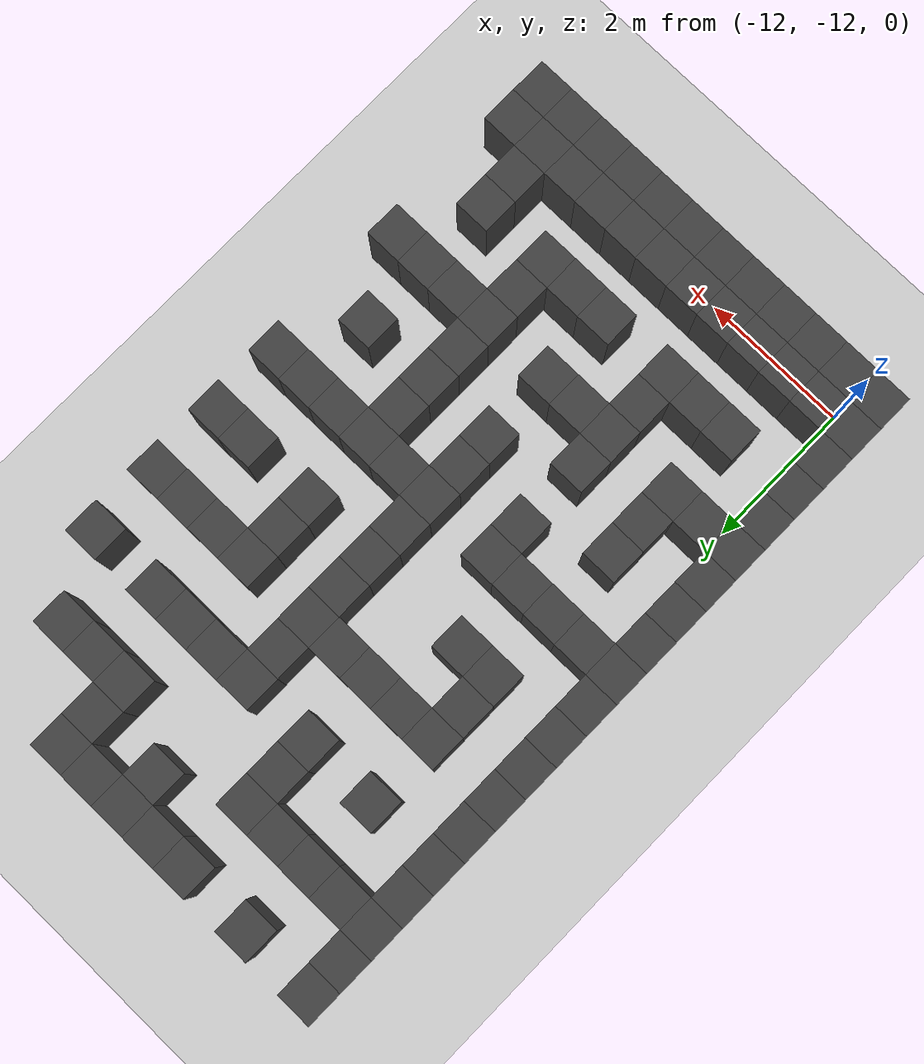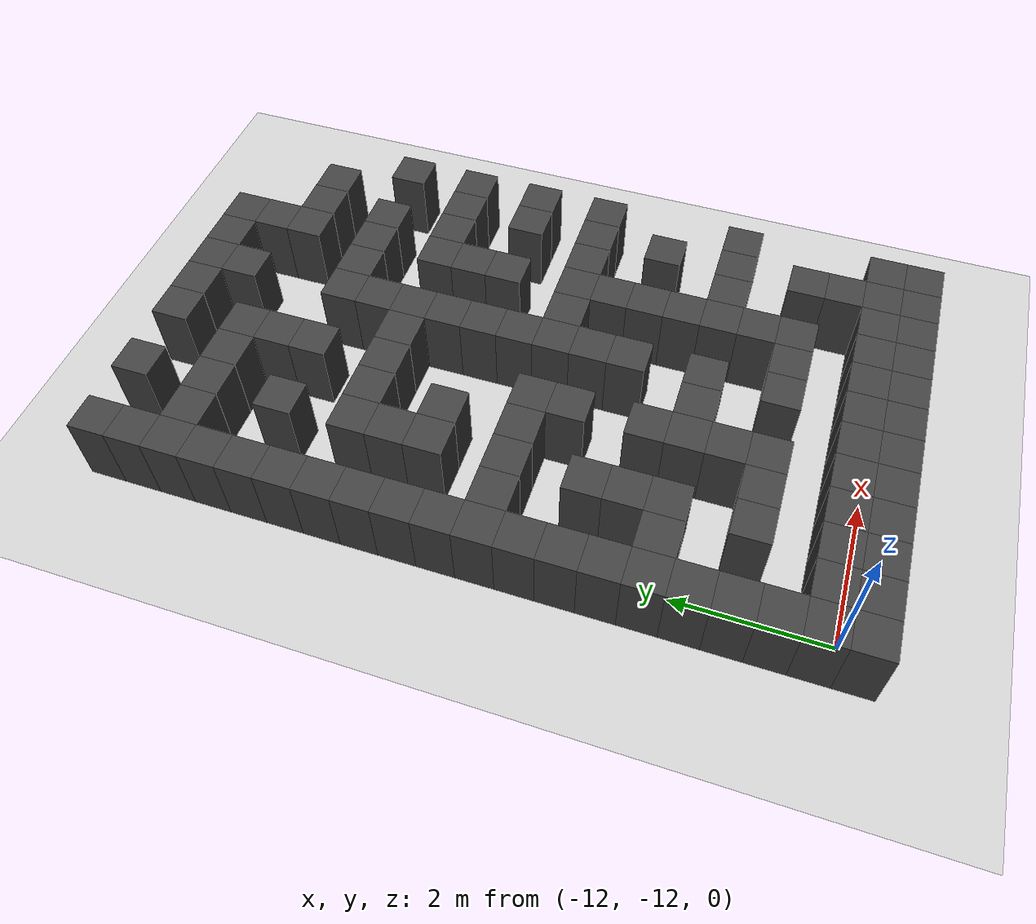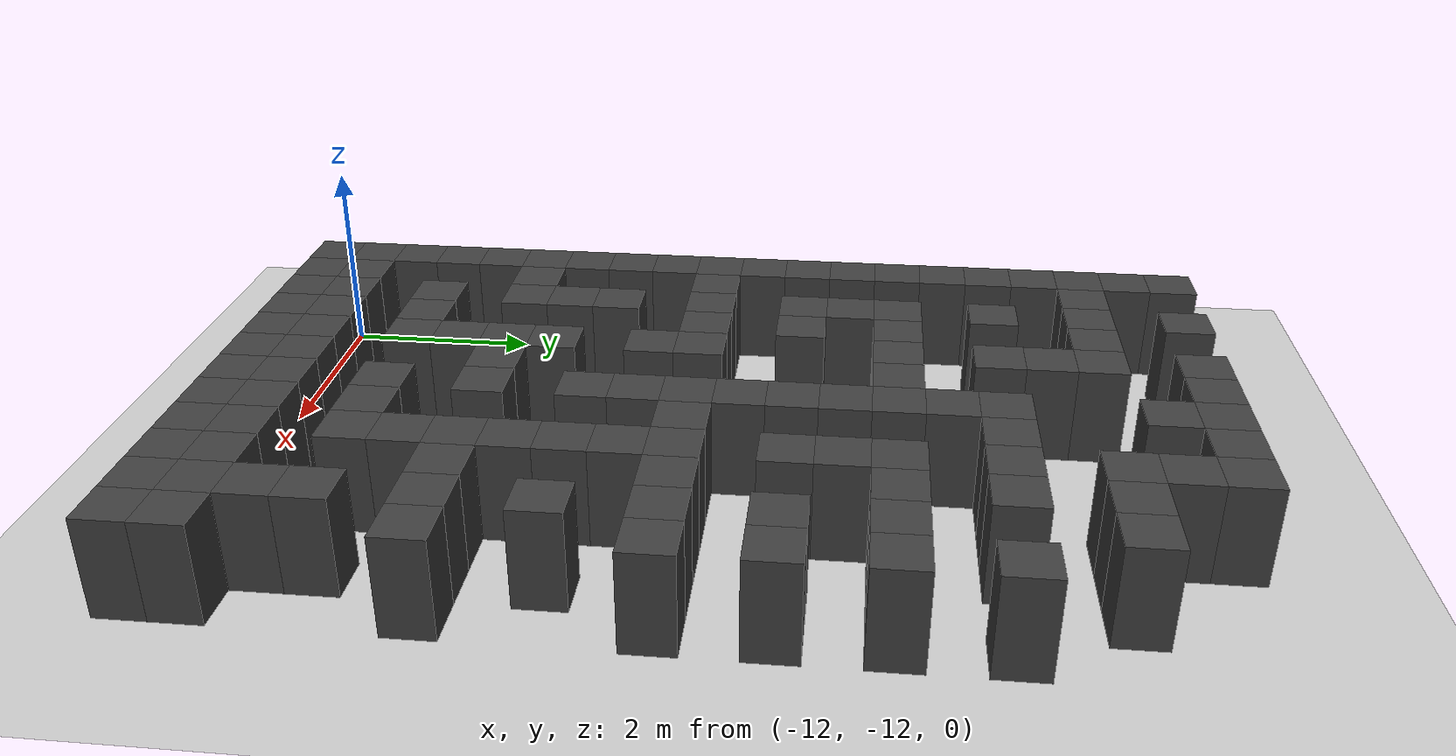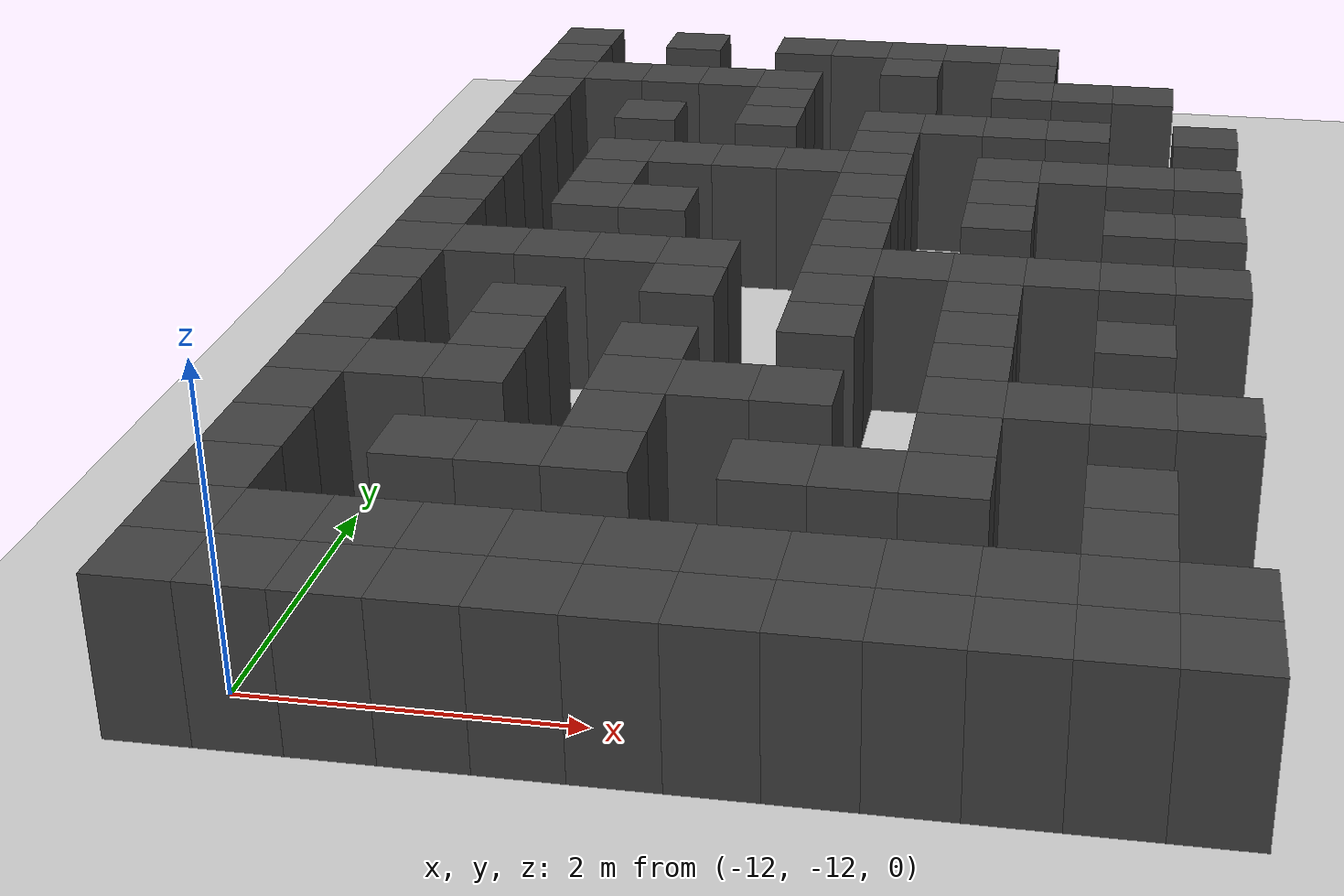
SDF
<sdf version="1.7">
 <world name="map_16588">
  <model name="ground_plane">
   <static>true</static>
   <link name="link">
    <collision name="collision">
     <geometry><plane><normal>0 0 1</normal><size>200 200</size></plane></geometry>
    </collision>
    <visual name="visual">
     <geometry><plane><normal>0 0 1</normal><size>200 200</size></plane></geometry>
     <material><ambient>0.8 0.8 0.8 1</ambient><diffuse>0.8 0.8 0.8 1</diffuse></material>
    </visual>
   </link>
  </model>
  <model name="maze_environment">
   <static>true</static>
   <link name="wall_723">
    <pose>-12.250 -2.750 0.500 0 0 0</pose>
    <collision name="col"><geometry><box><size>0.5 0.5 1.0</size></box></geometry></collision>
    <visual name="vis">
     <geometry><box><size>0.5 0.5 1.0</size></box></geometry>
     <material><ambient>0.15 0.15 0.15 1</ambient><diffuse>0.25 0.25 0.25 1</diffuse></material>
    </visual>
   </link>
   <link name="wall_724">
    <pose>-11.250 -2.750 0.500 0 0 0</pose>
    <collision name="col"><geometry><box><size>0.5 0.5 1.0</size></box></geometry></collision>
    <visual name="vis">
     <geometry><box><size>0.5 0.5 1.0</size></box></geometry>
     <material><ambient>0.15 0.15 0.15 1</ambient><diffuse>0.25 0.25 0.25 1</diffuse></material>
    </visual>
   </link>
   <link name="wall_725">
    <pose>-10.250 -2.750 0.500 0 0 0</pose>
    <collision name="col"><geometry><box><size>0.5 0.5 1.0</size></box></geometry></collision>
    <visual name="vis">
     <geometry><box><size>0.5 0.5 1.0</size></box></geometry>
     <material><ambient>0.15 0.15 0.15 1</ambient><diffuse>0.25 0.25 0.25 1</diffuse></material>
    </visual>
   </link>
   <link name="wall_726">
    <pose>-9.750 -2.750 0.500 0 0 0</pose>
    <collision name="col"><geometry><box><size>0.5 0.5 1.0</size></box></geometry></collision>
    <visual name="vis">
     <geometry><box><size>0.5 0.5 1.0</size></box></geometry>
     <material><ambient>0.15 0.15 0.15 1</ambient><diffuse>0.25 0.25 0.25 1</diffuse></material>
    </visual>
   </link>
   <link name="wall_727">
    <pose>-9.250 -2.750 0.500 0 0 0</pose>
    <collision name="col"><geometry><box><size>0.5 0.5 1.0</size></box></geometry></collision>
    <visual name="vis">
     <geometry><box><size>0.5 0.5 1.0</size></box></geometry>
     <material><ambient>0.15 0.15 0.15 1</ambient><diffuse>0.25 0.25 0.25 1</diffuse></material>
    </visual>
   </link>
   <link name="wall_728">
    <pose>-8.750 -2.750 0.500 0 0 0</pose>
    <collision name="col"><geometry><box><size>0.5 0.5 1.0</size></box></geometry></collision>
    <visual name="vis">
     <geometry><box><size>0.5 0.5 1.0</size></box></geometry>
     <material><ambient>0.15 0.15 0.15 1</ambient><diffuse>0.25 0.25 0.25 1</diffuse></material>
    </visual>
   </link>
   <link name="wall_729">
    <pose>-8.250 -2.750 0.500 0 0 0</pose>
    <collision name="col"><geometry><box><size>0.5 0.5 1.0</size></box></geometry></collision>
    <visual name="vis">
     <geometry><box><size>0.5 0.5 1.0</size></box></geometry>
     <material><ambient>0.15 0.15 0.15 1</ambient><diffuse>0.25 0.25 0.25 1</diffuse></material>
    </visual>
   </link>
   <link name="wall_757">
    <pose>-12.250 -3.250 0.500 0 0 0</pose>
    <collision name="col"><geometry><box><size>0.5 0.5 1.0</size></box></geometry></collision>
    <visual name="vis">
     <geometry><box><size>0.5 0.5 1.0</size></box></geometry>
     <material><ambient>0.15 0.15 0.15 1</ambient><diffuse>0.25 0.25 0.25 1</diffuse></material>
    </visual>
   </link>
   <link name="wall_758">
    <pose>-9.250 -3.250 0.500 0 0 0</pose>
    <collision name="col"><geometry><box><size>0.5 0.5 1.0</size></box></geometry></collision>
    <visual name="vis">
     <geometry><box><size>0.5 0.5 1.0</size></box></geometry>
     <material><ambient>0.15 0.15 0.15 1</ambient><diffuse>0.25 0.25 0.25 1</diffuse></material>
    </visual>
   </link>
   <link name="wall_759">
    <pose>-8.250 -3.250 0.500 0 0 0</pose>
    <collision name="col"><geometry><box><size>0.5 0.5 1.0</size></box></geometry></collision>
    <visual name="vis">
     <geometry><box><size>0.5 0.5 1.0</size></box></geometry>
     <material><ambient>0.15 0.15 0.15 1</ambient><diffuse>0.25 0.25 0.25 1</diffuse></material>
    </visual>
   </link>
   <link name="wall_771">
    <pose>-12.250 -3.750 0.500 0 0 0</pose>
    <collision name="col"><geometry><box><size>0.5 0.5 1.0</size></box></geometry></collision>
    <visual name="vis">
     <geometry><box><size>0.5 0.5 1.0</size></box></geometry>
     <material><ambient>0.15 0.15 0.15 1</ambient><diffuse>0.25 0.25 0.25 1</diffuse></material>
    </visual>
   </link>
   <link name="wall_772">
    <pose>-11.750 -3.750 0.500 0 0 0</pose>
    <collision name="col"><geometry><box><size>0.5 0.5 1.0</size></box></geometry></collision>
    <visual name="vis">
     <geometry><box><size>0.5 0.5 1.0</size></box></geometry>
     <material><ambient>0.15 0.15 0.15 1</ambient><diffuse>0.25 0.25 0.25 1</diffuse></material>
    </visual>
   </link>
   <link name="wall_773">
    <pose>-11.250 -3.750 0.500 0 0 0</pose>
    <collision name="col"><geometry><box><size>0.5 0.5 1.0</size></box></geometry></collision>
    <visual name="vis">
     <geometry><box><size>0.5 0.5 1.0</size></box></geometry>
     <material><ambient>0.15 0.15 0.15 1</ambient><diffuse>0.25 0.25 0.25 1</diffuse></material>
    </visual>
   </link>
   <link name="wall_774">
    <pose>-10.750 -3.750 0.500 0 0 0</pose>
    <collision name="col"><geometry><box><size>0.5 0.5 1.0</size></box></geometry></collision>
    <visual name="vis">
     <geometry><box><size>0.5 0.5 1.0</size></box></geometry>
     <material><ambient>0.15 0.15 0.15 1</ambient><diffuse>0.25 0.25 0.25 1</diffuse></material>
    </visual>
   </link>
   <link name="wall_775">
    <pose>-10.250 -3.750 0.500 0 0 0</pose>
    <collision name="col"><geometry><box><size>0.5 0.5 1.0</size></box></geometry></collision>
    <visual name="vis">
     <geometry><box><size>0.5 0.5 1.0</size></box></geometry>
     <material><ambient>0.15 0.15 0.15 1</ambient><diffuse>0.25 0.25 0.25 1</diffuse></material>
    </visual>
   </link>
   <link name="wall_776">
    <pose>-8.250 -3.750 0.500 0 0 0</pose>
    <collision name="col"><geometry><box><size>0.5 0.5 1.0</size></box></geometry></collision>
    <visual name="vis">
     <geometry><box><size>0.5 0.5 1.0</size></box></geometry>
     <material><ambient>0.15 0.15 0.15 1</ambient><diffuse>0.25 0.25 0.25 1</diffuse></material>
    </visual>
   </link>
   <link name="wall_777">
    <pose>-7.750 -3.750 0.500 0 0 0</pose>
    <collision name="col"><geometry><box><size>0.5 0.5 1.0</size></box></geometry></collision>
    <visual name="vis">
     <geometry><box><size>0.5 0.5 1.0</size></box></geometry>
     <material><ambient>0.15 0.15 0.15 1</ambient><diffuse>0.25 0.25 0.25 1</diffuse></material>
    </visual>
   </link>
   <link name="wall_778">
    <pose>-7.250 -3.750 0.500 0 0 0</pose>
    <collision name="col"><geometry><box><size>0.5 0.5 1.0</size></box></geometry></collision>
    <visual name="vis">
     <geometry><box><size>0.5 0.5 1.0</size></box></geometry>
     <material><ambient>0.15 0.15 0.15 1</ambient><diffuse>0.25 0.25 0.25 1</diffuse></material>
    </visual>
   </link>
   <link name="wall_805">
    <pose>-12.250 -4.250 0.500 0 0 0</pose>
    <collision name="col"><geometry><box><size>0.5 0.5 1.0</size></box></geometry></collision>
    <visual name="vis">
     <geometry><box><size>0.5 0.5 1.0</size></box></geometry>
     <material><ambient>0.15 0.15 0.15 1</ambient><diffuse>0.25 0.25 0.25 1</diffuse></material>
    </visual>
   </link>
   <link name="wall_806">
    <pose>-10.250 -4.250 0.500 0 0 0</pose>
    <collision name="col"><geometry><box><size>0.5 0.5 1.0</size></box></geometry></collision>
    <visual name="vis">
     <geometry><box><size>0.5 0.5 1.0</size></box></geometry>
     <material><ambient>0.15 0.15 0.15 1</ambient><diffuse>0.25 0.25 0.25 1</diffuse></material>
    </visual>
   </link>
   <link name="wall_822">
    <pose>-12.250 -4.750 0.500 0 0 0</pose>
    <collision name="col"><geometry><box><size>0.5 0.5 1.0</size></box></geometry></collision>
    <visual name="vis">
     <geometry><box><size>0.5 0.5 1.0</size></box></geometry>
     <material><ambient>0.15 0.15 0.15 1</ambient><diffuse>0.25 0.25 0.25 1</diffuse></material>
    </visual>
   </link>
   <link name="wall_823">
    <pose>-11.250 -4.750 0.500 0 0 0</pose>
    <collision name="col"><geometry><box><size>0.5 0.5 1.0</size></box></geometry></collision>
    <visual name="vis">
     <geometry><box><size>0.5 0.5 1.0</size></box></geometry>
     <material><ambient>0.15 0.15 0.15 1</ambient><diffuse>0.25 0.25 0.25 1</diffuse></material>
    </visual>
   </link>
   <link name="wall_824">
    <pose>-10.250 -4.750 0.500 0 0 0</pose>
    <collision name="col"><geometry><box><size>0.5 0.5 1.0</size></box></geometry></collision>
    <visual name="vis">
     <geometry><box><size>0.5 0.5 1.0</size></box></geometry>
     <material><ambient>0.15 0.15 0.15 1</ambient><diffuse>0.25 0.25 0.25 1</diffuse></material>
    </visual>
   </link>
   <link name="wall_825">
    <pose>-9.250 -4.750 0.500 0 0 0</pose>
    <collision name="col"><geometry><box><size>0.5 0.5 1.0</size></box></geometry></collision>
    <visual name="vis">
     <geometry><box><size>0.5 0.5 1.0</size></box></geometry>
     <material><ambient>0.15 0.15 0.15 1</ambient><diffuse>0.25 0.25 0.25 1</diffuse></material>
    </visual>
   </link>
   <link name="wall_826">
    <pose>-8.750 -4.750 0.500 0 0 0</pose>
    <collision name="col"><geometry><box><size>0.5 0.5 1.0</size></box></geometry></collision>
    <visual name="vis">
     <geometry><box><size>0.5 0.5 1.0</size></box></geometry>
     <material><ambient>0.15 0.15 0.15 1</ambient><diffuse>0.25 0.25 0.25 1</diffuse></material>
    </visual>
   </link>
   <link name="wall_827">
    <pose>-8.250 -4.750 0.500 0 0 0</pose>
    <collision name="col"><geometry><box><size>0.5 0.5 1.0</size></box></geometry></collision>
    <visual name="vis">
     <geometry><box><size>0.5 0.5 1.0</size></box></geometry>
     <material><ambient>0.15 0.15 0.15 1</ambient><diffuse>0.25 0.25 0.25 1</diffuse></material>
    </visual>
   </link>
   <link name="wall_828">
    <pose>-7.750 -4.750 0.500 0 0 0</pose>
    <collision name="col"><geometry><box><size>0.5 0.5 1.0</size></box></geometry></collision>
    <visual name="vis">
     <geometry><box><size>0.5 0.5 1.0</size></box></geometry>
     <material><ambient>0.15 0.15 0.15 1</ambient><diffuse>0.25 0.25 0.25 1</diffuse></material>
    </visual>
   </link>
   <link name="wall_829">
    <pose>-6.750 -4.750 0.500 0 0 0</pose>
    <collision name="col"><geometry><box><size>0.5 0.5 1.0</size></box></geometry></collision>
    <visual name="vis">
     <geometry><box><size>0.5 0.5 1.0</size></box></geometry>
     <material><ambient>0.15 0.15 0.15 1</ambient><diffuse>0.25 0.25 0.25 1</diffuse></material>
    </visual>
   </link>
   <link name="wall_854">
    <pose>-12.250 -5.250 0.500 0 0 0</pose>
    <collision name="col"><geometry><box><size>0.5 0.5 1.0</size></box></geometry></collision>
    <visual name="vis">
     <geometry><box><size>0.5 0.5 1.0</size></box></geometry>
     <material><ambient>0.15 0.15 0.15 1</ambient><diffuse>0.25 0.25 0.25 1</diffuse></material>
    </visual>
   </link>
   <link name="wall_855">
    <pose>-9.250 -5.250 0.500 0 0 0</pose>
    <collision name="col"><geometry><box><size>0.5 0.5 1.0</size></box></geometry></collision>
    <visual name="vis">
     <geometry><box><size>0.5 0.5 1.0</size></box></geometry>
     <material><ambient>0.15 0.15 0.15 1</ambient><diffuse>0.25 0.25 0.25 1</diffuse></material>
    </visual>
   </link>
   <link name="wall_867">
    <pose>-12.250 -5.750 0.500 0 0 0</pose>
    <collision name="col"><geometry><box><size>0.5 0.5 1.0</size></box></geometry></collision>
    <visual name="vis">
     <geometry><box><size>0.5 0.5 1.0</size></box></geometry>
     <material><ambient>0.15 0.15 0.15 1</ambient><diffuse>0.25 0.25 0.25 1</diffuse></material>
    </visual>
   </link>
   <link name="wall_868">
    <pose>-11.250 -5.750 0.500 0 0 0</pose>
    <collision name="col"><geometry><box><size>0.5 0.5 1.0</size></box></geometry></collision>
    <visual name="vis">
     <geometry><box><size>0.5 0.5 1.0</size></box></geometry>
     <material><ambient>0.15 0.15 0.15 1</ambient><diffuse>0.25 0.25 0.25 1</diffuse></material>
    </visual>
   </link>
   <link name="wall_869">
    <pose>-10.750 -5.750 0.500 0 0 0</pose>
    <collision name="col"><geometry><box><size>0.5 0.5 1.0</size></box></geometry></collision>
    <visual name="vis">
     <geometry><box><size>0.5 0.5 1.0</size></box></geometry>
     <material><ambient>0.15 0.15 0.15 1</ambient><diffuse>0.25 0.25 0.25 1</diffuse></material>
    </visual>
   </link>
   <link name="wall_870">
    <pose>-10.250 -5.750 0.500 0 0 0</pose>
    <collision name="col"><geometry><box><size>0.5 0.5 1.0</size></box></geometry></collision>
    <visual name="vis">
     <geometry><box><size>0.5 0.5 1.0</size></box></geometry>
     <material><ambient>0.15 0.15 0.15 1</ambient><diffuse>0.25 0.25 0.25 1</diffuse></material>
    </visual>
   </link>
   <link name="wall_871">
    <pose>-9.750 -5.750 0.500 0 0 0</pose>
    <collision name="col"><geometry><box><size>0.5 0.5 1.0</size></box></geometry></collision>
    <visual name="vis">
     <geometry><box><size>0.5 0.5 1.0</size></box></geometry>
     <material><ambient>0.15 0.15 0.15 1</ambient><diffuse>0.25 0.25 0.25 1</diffuse></material>
    </visual>
   </link>
   <link name="wall_872">
    <pose>-9.250 -5.750 0.500 0 0 0</pose>
    <collision name="col"><geometry><box><size>0.5 0.5 1.0</size></box></geometry></collision>
    <visual name="vis">
     <geometry><box><size>0.5 0.5 1.0</size></box></geometry>
     <material><ambient>0.15 0.15 0.15 1</ambient><diffuse>0.25 0.25 0.25 1</diffuse></material>
    </visual>
   </link>
   <link name="wall_873">
    <pose>-8.250 -5.750 0.500 0 0 0</pose>
    <collision name="col"><geometry><box><size>0.5 0.5 1.0</size></box></geometry></collision>
    <visual name="vis">
     <geometry><box><size>0.5 0.5 1.0</size></box></geometry>
     <material><ambient>0.15 0.15 0.15 1</ambient><diffuse>0.25 0.25 0.25 1</diffuse></material>
    </visual>
   </link>
   <link name="wall_874">
    <pose>-7.750 -5.750 0.500 0 0 0</pose>
    <collision name="col"><geometry><box><size>0.5 0.5 1.0</size></box></geometry></collision>
    <visual name="vis">
     <geometry><box><size>0.5 0.5 1.0</size></box></geometry>
     <material><ambient>0.15 0.15 0.15 1</ambient><diffuse>0.25 0.25 0.25 1</diffuse></material>
    </visual>
   </link>
   <link name="wall_875">
    <pose>-7.250 -5.750 0.500 0 0 0</pose>
    <collision name="col"><geometry><box><size>0.5 0.5 1.0</size></box></geometry></collision>
    <visual name="vis">
     <geometry><box><size>0.5 0.5 1.0</size></box></geometry>
     <material><ambient>0.15 0.15 0.15 1</ambient><diffuse>0.25 0.25 0.25 1</diffuse></material>
    </visual>
   </link>
   <link name="wall_876">
    <pose>-6.750 -5.750 0.500 0 0 0</pose>
    <collision name="col"><geometry><box><size>0.5 0.5 1.0</size></box></geometry></collision>
    <visual name="vis">
     <geometry><box><size>0.5 0.5 1.0</size></box></geometry>
     <material><ambient>0.15 0.15 0.15 1</ambient><diffuse>0.25 0.25 0.25 1</diffuse></material>
    </visual>
   </link>
   <link name="wall_898">
    <pose>-12.250 -6.250 0.500 0 0 0</pose>
    <collision name="col"><geometry><box><size>0.5 0.5 1.0</size></box></geometry></collision>
    <visual name="vis">
     <geometry><box><size>0.5 0.5 1.0</size></box></geometry>
     <material><ambient>0.15 0.15 0.15 1</ambient><diffuse>0.25 0.25 0.25 1</diffuse></material>
    </visual>
   </link>
   <link name="wall_899">
    <pose>-11.250 -6.250 0.500 0 0 0</pose>
    <collision name="col"><geometry><box><size>0.5 0.5 1.0</size></box></geometry></collision>
    <visual name="vis">
     <geometry><box><size>0.5 0.5 1.0</size></box></geometry>
     <material><ambient>0.15 0.15 0.15 1</ambient><diffuse>0.25 0.25 0.25 1</diffuse></material>
    </visual>
   </link>
   <link name="wall_900">
    <pose>-9.250 -6.250 0.500 0 0 0</pose>
    <collision name="col"><geometry><box><size>0.5 0.5 1.0</size></box></geometry></collision>
    <visual name="vis">
     <geometry><box><size>0.5 0.5 1.0</size></box></geometry>
     <material><ambient>0.15 0.15 0.15 1</ambient><diffuse>0.25 0.25 0.25 1</diffuse></material>
    </visual>
   </link>
   <link name="wall_901">
    <pose>-8.250 -6.250 0.500 0 0 0</pose>
    <collision name="col"><geometry><box><size>0.5 0.5 1.0</size></box></geometry></collision>
    <visual name="vis">
     <geometry><box><size>0.5 0.5 1.0</size></box></geometry>
     <material><ambient>0.15 0.15 0.15 1</ambient><diffuse>0.25 0.25 0.25 1</diffuse></material>
    </visual>
   </link>
   <link name="wall_912">
    <pose>-12.250 -6.750 0.500 0 0 0</pose>
    <collision name="col"><geometry><box><size>0.5 0.5 1.0</size></box></geometry></collision>
    <visual name="vis">
     <geometry><box><size>0.5 0.5 1.0</size></box></geometry>
     <material><ambient>0.15 0.15 0.15 1</ambient><diffuse>0.25 0.25 0.25 1</diffuse></material>
    </visual>
   </link>
   <link name="wall_913">
    <pose>-11.250 -6.750 0.500 0 0 0</pose>
    <collision name="col"><geometry><box><size>0.5 0.5 1.0</size></box></geometry></collision>
    <visual name="vis">
     <geometry><box><size>0.5 0.5 1.0</size></box></geometry>
     <material><ambient>0.15 0.15 0.15 1</ambient><diffuse>0.25 0.25 0.25 1</diffuse></material>
    </visual>
   </link>
   <link name="wall_914">
    <pose>-10.750 -6.750 0.500 0 0 0</pose>
    <collision name="col"><geometry><box><size>0.5 0.5 1.0</size></box></geometry></collision>
    <visual name="vis">
     <geometry><box><size>0.5 0.5 1.0</size></box></geometry>
     <material><ambient>0.15 0.15 0.15 1</ambient><diffuse>0.25 0.25 0.25 1</diffuse></material>
    </visual>
   </link>
   <link name="wall_915">
    <pose>-9.250 -6.750 0.500 0 0 0</pose>
    <collision name="col"><geometry><box><size>0.5 0.5 1.0</size></box></geometry></collision>
    <visual name="vis">
     <geometry><box><size>0.5 0.5 1.0</size></box></geometry>
     <material><ambient>0.15 0.15 0.15 1</ambient><diffuse>0.25 0.25 0.25 1</diffuse></material>
    </visual>
   </link>
   <link name="wall_916">
    <pose>-8.250 -6.750 0.500 0 0 0</pose>
    <collision name="col"><geometry><box><size>0.5 0.5 1.0</size></box></geometry></collision>
    <visual name="vis">
     <geometry><box><size>0.5 0.5 1.0</size></box></geometry>
     <material><ambient>0.15 0.15 0.15 1</ambient><diffuse>0.25 0.25 0.25 1</diffuse></material>
    </visual>
   </link>
   <link name="wall_917">
    <pose>-7.250 -6.750 0.500 0 0 0</pose>
    <collision name="col"><geometry><box><size>0.5 0.5 1.0</size></box></geometry></collision>
    <visual name="vis">
     <geometry><box><size>0.5 0.5 1.0</size></box></geometry>
     <material><ambient>0.15 0.15 0.15 1</ambient><diffuse>0.25 0.25 0.25 1</diffuse></material>
    </visual>
   </link>
   <link name="wall_918">
    <pose>-6.750 -6.750 0.500 0 0 0</pose>
    <collision name="col"><geometry><box><size>0.5 0.5 1.0</size></box></geometry></collision>
    <visual name="vis">
     <geometry><box><size>0.5 0.5 1.0</size></box></geometry>
     <material><ambient>0.15 0.15 0.15 1</ambient><diffuse>0.25 0.25 0.25 1</diffuse></material>
    </visual>
   </link>
   <link name="wall_945">
    <pose>-12.250 -7.250 0.500 0 0 0</pose>
    <collision name="col"><geometry><box><size>0.5 0.5 1.0</size></box></geometry></collision>
    <visual name="vis">
     <geometry><box><size>0.5 0.5 1.0</size></box></geometry>
     <material><ambient>0.15 0.15 0.15 1</ambient><diffuse>0.25 0.25 0.25 1</diffuse></material>
    </visual>
   </link>
   <link name="wall_946">
    <pose>-9.250 -7.250 0.500 0 0 0</pose>
    <collision name="col"><geometry><box><size>0.5 0.5 1.0</size></box></geometry></collision>
    <visual name="vis">
     <geometry><box><size>0.5 0.5 1.0</size></box></geometry>
     <material><ambient>0.15 0.15 0.15 1</ambient><diffuse>0.25 0.25 0.25 1</diffuse></material>
    </visual>
   </link>
   <link name="wall_956">
    <pose>-12.250 -7.750 0.500 0 0 0</pose>
    <collision name="col"><geometry><box><size>0.5 0.5 1.0</size></box></geometry></collision>
    <visual name="vis">
     <geometry><box><size>0.5 0.5 1.0</size></box></geometry>
     <material><ambient>0.15 0.15 0.15 1</ambient><diffuse>0.25 0.25 0.25 1</diffuse></material>
    </visual>
   </link>
   <link name="wall_957">
    <pose>-11.750 -7.750 0.500 0 0 0</pose>
    <collision name="col"><geometry><box><size>0.5 0.5 1.0</size></box></geometry></collision>
    <visual name="vis">
     <geometry><box><size>0.5 0.5 1.0</size></box></geometry>
     <material><ambient>0.15 0.15 0.15 1</ambient><diffuse>0.25 0.25 0.25 1</diffuse></material>
    </visual>
   </link>
   <link name="wall_958">
    <pose>-11.250 -7.750 0.500 0 0 0</pose>
    <collision name="col"><geometry><box><size>0.5 0.5 1.0</size></box></geometry></collision>
    <visual name="vis">
     <geometry><box><size>0.5 0.5 1.0</size></box></geometry>
     <material><ambient>0.15 0.15 0.15 1</ambient><diffuse>0.25 0.25 0.25 1</diffuse></material>
    </visual>
   </link>
   <link name="wall_959">
    <pose>-10.750 -7.750 0.500 0 0 0</pose>
    <collision name="col"><geometry><box><size>0.5 0.5 1.0</size></box></geometry></collision>
    <visual name="vis">
     <geometry><box><size>0.5 0.5 1.0</size></box></geometry>
     <material><ambient>0.15 0.15 0.15 1</ambient><diffuse>0.25 0.25 0.25 1</diffuse></material>
    </visual>
   </link>
   <link name="wall_960">
    <pose>-10.250 -7.750 0.500 0 0 0</pose>
    <collision name="col"><geometry><box><size>0.5 0.5 1.0</size></box></geometry></collision>
    <visual name="vis">
     <geometry><box><size>0.5 0.5 1.0</size></box></geometry>
     <material><ambient>0.15 0.15 0.15 1</ambient><diffuse>0.25 0.25 0.25 1</diffuse></material>
    </visual>
   </link>
   <link name="wall_961">
    <pose>-9.250 -7.750 0.500 0 0 0</pose>
    <collision name="col"><geometry><box><size>0.5 0.5 1.0</size></box></geometry></collision>
    <visual name="vis">
     <geometry><box><size>0.5 0.5 1.0</size></box></geometry>
     <material><ambient>0.15 0.15 0.15 1</ambient><diffuse>0.25 0.25 0.25 1</diffuse></material>
    </visual>
   </link>
   <link name="wall_962">
    <pose>-8.750 -7.750 0.500 0 0 0</pose>
    <collision name="col"><geometry><box><size>0.5 0.5 1.0</size></box></geometry></collision>
    <visual name="vis">
     <geometry><box><size>0.5 0.5 1.0</size></box></geometry>
     <material><ambient>0.15 0.15 0.15 1</ambient><diffuse>0.25 0.25 0.25 1</diffuse></material>
    </visual>
   </link>
   <link name="wall_963">
    <pose>-8.250 -7.750 0.500 0 0 0</pose>
    <collision name="col"><geometry><box><size>0.5 0.5 1.0</size></box></geometry></collision>
    <visual name="vis">
     <geometry><box><size>0.5 0.5 1.0</size></box></geometry>
     <material><ambient>0.15 0.15 0.15 1</ambient><diffuse>0.25 0.25 0.25 1</diffuse></material>
    </visual>
   </link>
   <link name="wall_964">
    <pose>-7.750 -7.750 0.500 0 0 0</pose>
    <collision name="col"><geometry><box><size>0.5 0.5 1.0</size></box></geometry></collision>
    <visual name="vis">
     <geometry><box><size>0.5 0.5 1.0</size></box></geometry>
     <material><ambient>0.15 0.15 0.15 1</ambient><diffuse>0.25 0.25 0.25 1</diffuse></material>
    </visual>
   </link>
   <link name="wall_965">
    <pose>-7.250 -7.750 0.500 0 0 0</pose>
    <collision name="col"><geometry><box><size>0.5 0.5 1.0</size></box></geometry></collision>
    <visual name="vis">
     <geometry><box><size>0.5 0.5 1.0</size></box></geometry>
     <material><ambient>0.15 0.15 0.15 1</ambient><diffuse>0.25 0.25 0.25 1</diffuse></material>
    </visual>
   </link>
   <link name="wall_966">
    <pose>-6.750 -7.750 0.500 0 0 0</pose>
    <collision name="col"><geometry><box><size>0.5 0.5 1.0</size></box></geometry></collision>
    <visual name="vis">
     <geometry><box><size>0.5 0.5 1.0</size></box></geometry>
     <material><ambient>0.15 0.15 0.15 1</ambient><diffuse>0.25 0.25 0.25 1</diffuse></material>
    </visual>
   </link>
   <link name="wall_995">
    <pose>-12.250 -8.250 0.500 0 0 0</pose>
    <collision name="col"><geometry><box><size>0.5 0.5 1.0</size></box></geometry></collision>
    <visual name="vis">
     <geometry><box><size>0.5 0.5 1.0</size></box></geometry>
     <material><ambient>0.15 0.15 0.15 1</ambient><diffuse>0.25 0.25 0.25 1</diffuse></material>
    </visual>
   </link>
   <link name="wall_996">
    <pose>-10.250 -8.250 0.500 0 0 0</pose>
    <collision name="col"><geometry><box><size>0.5 0.5 1.0</size></box></geometry></collision>
    <visual name="vis">
     <geometry><box><size>0.5 0.5 1.0</size></box></geometry>
     <material><ambient>0.15 0.15 0.15 1</ambient><diffuse>0.25 0.25 0.25 1</diffuse></material>
    </visual>
   </link>
   <link name="wall_997">
    <pose>-9.250 -8.250 0.500 0 0 0</pose>
    <collision name="col"><geometry><box><size>0.5 0.5 1.0</size></box></geometry></collision>
    <visual name="vis">
     <geometry><box><size>0.5 0.5 1.0</size></box></geometry>
     <material><ambient>0.15 0.15 0.15 1</ambient><diffuse>0.25 0.25 0.25 1</diffuse></material>
    </visual>
   </link>
   <link name="wall_998">
    <pose>-8.250 -8.250 0.500 0 0 0</pose>
    <collision name="col"><geometry><box><size>0.5 0.5 1.0</size></box></geometry></collision>
    <visual name="vis">
     <geometry><box><size>0.5 0.5 1.0</size></box></geometry>
     <material><ambient>0.15 0.15 0.15 1</ambient><diffuse>0.25 0.25 0.25 1</diffuse></material>
    </visual>
   </link>
   <link name="wall_1009">
    <pose>-12.250 -8.750 0.500 0 0 0</pose>
    <collision name="col"><geometry><box><size>0.5 0.5 1.0</size></box></geometry></collision>
    <visual name="vis">
     <geometry><box><size>0.5 0.5 1.0</size></box></geometry>
     <material><ambient>0.15 0.15 0.15 1</ambient><diffuse>0.25 0.25 0.25 1</diffuse></material>
    </visual>
   </link>
   <link name="wall_1010">
    <pose>-11.250 -8.750 0.500 0 0 0</pose>
    <collision name="col"><geometry><box><size>0.5 0.5 1.0</size></box></geometry></collision>
    <visual name="vis">
     <geometry><box><size>0.5 0.5 1.0</size></box></geometry>
     <material><ambient>0.15 0.15 0.15 1</ambient><diffuse>0.25 0.25 0.25 1</diffuse></material>
    </visual>
   </link>
   <link name="wall_1011">
    <pose>-9.250 -8.750 0.500 0 0 0</pose>
    <collision name="col"><geometry><box><size>0.5 0.5 1.0</size></box></geometry></collision>
    <visual name="vis">
     <geometry><box><size>0.5 0.5 1.0</size></box></geometry>
     <material><ambient>0.15 0.15 0.15 1</ambient><diffuse>0.25 0.25 0.25 1</diffuse></material>
    </visual>
   </link>
   <link name="wall_1012">
    <pose>-8.250 -8.750 0.500 0 0 0</pose>
    <collision name="col"><geometry><box><size>0.5 0.5 1.0</size></box></geometry></collision>
    <visual name="vis">
     <geometry><box><size>0.5 0.5 1.0</size></box></geometry>
     <material><ambient>0.15 0.15 0.15 1</ambient><diffuse>0.25 0.25 0.25 1</diffuse></material>
    </visual>
   </link>
   <link name="wall_1013">
    <pose>-7.250 -8.750 0.500 0 0 0</pose>
    <collision name="col"><geometry><box><size>0.5 0.5 1.0</size></box></geometry></collision>
    <visual name="vis">
     <geometry><box><size>0.5 0.5 1.0</size></box></geometry>
     <material><ambient>0.15 0.15 0.15 1</ambient><diffuse>0.25 0.25 0.25 1</diffuse></material>
    </visual>
   </link>
   <link name="wall_1044">
    <pose>-12.250 -9.250 0.500 0 0 0</pose>
    <collision name="col"><geometry><box><size>0.5 0.5 1.0</size></box></geometry></collision>
    <visual name="vis">
     <geometry><box><size>0.5 0.5 1.0</size></box></geometry>
     <material><ambient>0.15 0.15 0.15 1</ambient><diffuse>0.25 0.25 0.25 1</diffuse></material>
    </visual>
   </link>
   <link name="wall_1045">
    <pose>-11.250 -9.250 0.500 0 0 0</pose>
    <collision name="col"><geometry><box><size>0.5 0.5 1.0</size></box></geometry></collision>
    <visual name="vis">
     <geometry><box><size>0.5 0.5 1.0</size></box></geometry>
     <material><ambient>0.15 0.15 0.15 1</ambient><diffuse>0.25 0.25 0.25 1</diffuse></material>
    </visual>
   </link>
   <link name="wall_1046">
    <pose>-10.250 -9.250 0.500 0 0 0</pose>
    <collision name="col"><geometry><box><size>0.5 0.5 1.0</size></box></geometry></collision>
    <visual name="vis">
     <geometry><box><size>0.5 0.5 1.0</size></box></geometry>
     <material><ambient>0.15 0.15 0.15 1</ambient><diffuse>0.25 0.25 0.25 1</diffuse></material>
    </visual>
   </link>
   <link name="wall_1047">
    <pose>-8.250 -9.250 0.500 0 0 0</pose>
    <collision name="col"><geometry><box><size>0.5 0.5 1.0</size></box></geometry></collision>
    <visual name="vis">
     <geometry><box><size>0.5 0.5 1.0</size></box></geometry>
     <material><ambient>0.15 0.15 0.15 1</ambient><diffuse>0.25 0.25 0.25 1</diffuse></material>
    </visual>
   </link>
   <link name="wall_1059">
    <pose>-12.250 -9.750 0.500 0 0 0</pose>
    <collision name="col"><geometry><box><size>0.5 0.5 1.0</size></box></geometry></collision>
    <visual name="vis">
     <geometry><box><size>0.5 0.5 1.0</size></box></geometry>
     <material><ambient>0.15 0.15 0.15 1</ambient><diffuse>0.25 0.25 0.25 1</diffuse></material>
    </visual>
   </link>
   <link name="wall_1060">
    <pose>-11.750 -9.750 0.500 0 0 0</pose>
    <collision name="col"><geometry><box><size>0.5 0.5 1.0</size></box></geometry></collision>
    <visual name="vis">
     <geometry><box><size>0.5 0.5 1.0</size></box></geometry>
     <material><ambient>0.15 0.15 0.15 1</ambient><diffuse>0.25 0.25 0.25 1</diffuse></material>
    </visual>
   </link>
   <link name="wall_1061">
    <pose>-11.250 -9.750 0.500 0 0 0</pose>
    <collision name="col"><geometry><box><size>0.5 0.5 1.0</size></box></geometry></collision>
    <visual name="vis">
     <geometry><box><size>0.5 0.5 1.0</size></box></geometry>
     <material><ambient>0.15 0.15 0.15 1</ambient><diffuse>0.25 0.25 0.25 1</diffuse></material>
    </visual>
   </link>
   <link name="wall_1062">
    <pose>-10.250 -9.750 0.500 0 0 0</pose>
    <collision name="col"><geometry><box><size>0.5 0.5 1.0</size></box></geometry></collision>
    <visual name="vis">
     <geometry><box><size>0.5 0.5 1.0</size></box></geometry>
     <material><ambient>0.15 0.15 0.15 1</ambient><diffuse>0.25 0.25 0.25 1</diffuse></material>
    </visual>
   </link>
   <link name="wall_1063">
    <pose>-9.750 -9.750 0.500 0 0 0</pose>
    <collision name="col"><geometry><box><size>0.5 0.5 1.0</size></box></geometry></collision>
    <visual name="vis">
     <geometry><box><size>0.5 0.5 1.0</size></box></geometry>
     <material><ambient>0.15 0.15 0.15 1</ambient><diffuse>0.25 0.25 0.25 1</diffuse></material>
    </visual>
   </link>
   <link name="wall_1064">
    <pose>-9.250 -9.750 0.500 0 0 0</pose>
    <collision name="col"><geometry><box><size>0.5 0.5 1.0</size></box></geometry></collision>
    <visual name="vis">
     <geometry><box><size>0.5 0.5 1.0</size></box></geometry>
     <material><ambient>0.15 0.15 0.15 1</ambient><diffuse>0.25 0.25 0.25 1</diffuse></material>
    </visual>
   </link>
   <link name="wall_1065">
    <pose>-8.250 -9.750 0.500 0 0 0</pose>
    <collision name="col"><geometry><box><size>0.5 0.5 1.0</size></box></geometry></collision>
    <visual name="vis">
     <geometry><box><size>0.5 0.5 1.0</size></box></geometry>
     <material><ambient>0.15 0.15 0.15 1</ambient><diffuse>0.25 0.25 0.25 1</diffuse></material>
    </visual>
   </link>
   <link name="wall_1066">
    <pose>-7.750 -9.750 0.500 0 0 0</pose>
    <collision name="col"><geometry><box><size>0.5 0.5 1.0</size></box></geometry></collision>
    <visual name="vis">
     <geometry><box><size>0.5 0.5 1.0</size></box></geometry>
     <material><ambient>0.15 0.15 0.15 1</ambient><diffuse>0.25 0.25 0.25 1</diffuse></material>
    </visual>
   </link>
   <link name="wall_1067">
    <pose>-7.250 -9.750 0.500 0 0 0</pose>
    <collision name="col"><geometry><box><size>0.5 0.5 1.0</size></box></geometry></collision>
    <visual name="vis">
     <geometry><box><size>0.5 0.5 1.0</size></box></geometry>
     <material><ambient>0.15 0.15 0.15 1</ambient><diffuse>0.25 0.25 0.25 1</diffuse></material>
    </visual>
   </link>
   <link name="wall_1068">
    <pose>-6.750 -9.750 0.500 0 0 0</pose>
    <collision name="col"><geometry><box><size>0.5 0.5 1.0</size></box></geometry></collision>
    <visual name="vis">
     <geometry><box><size>0.5 0.5 1.0</size></box></geometry>
     <material><ambient>0.15 0.15 0.15 1</ambient><diffuse>0.25 0.25 0.25 1</diffuse></material>
    </visual>
   </link>
   <link name="wall_1092">
    <pose>-12.250 -10.250 0.500 0 0 0</pose>
    <collision name="col"><geometry><box><size>0.5 0.5 1.0</size></box></geometry></collision>
    <visual name="vis">
     <geometry><box><size>0.5 0.5 1.0</size></box></geometry>
     <material><ambient>0.15 0.15 0.15 1</ambient><diffuse>0.25 0.25 0.25 1</diffuse></material>
    </visual>
   </link>
   <link name="wall_1093">
    <pose>-10.250 -10.250 0.500 0 0 0</pose>
    <collision name="col"><geometry><box><size>0.5 0.5 1.0</size></box></geometry></collision>
    <visual name="vis">
     <geometry><box><size>0.5 0.5 1.0</size></box></geometry>
     <material><ambient>0.15 0.15 0.15 1</ambient><diffuse>0.25 0.25 0.25 1</diffuse></material>
    </visual>
   </link>
   <link name="wall_1094">
    <pose>-8.250 -10.250 0.500 0 0 0</pose>
    <collision name="col"><geometry><box><size>0.5 0.5 1.0</size></box></geometry></collision>
    <visual name="vis">
     <geometry><box><size>0.5 0.5 1.0</size></box></geometry>
     <material><ambient>0.15 0.15 0.15 1</ambient><diffuse>0.25 0.25 0.25 1</diffuse></material>
    </visual>
   </link>
   <link name="wall_1104">
    <pose>-12.250 -10.750 0.500 0 0 0</pose>
    <collision name="col"><geometry><box><size>0.5 0.5 1.0</size></box></geometry></collision>
    <visual name="vis">
     <geometry><box><size>0.5 0.5 1.0</size></box></geometry>
     <material><ambient>0.15 0.15 0.15 1</ambient><diffuse>0.25 0.25 0.25 1</diffuse></material>
    </visual>
   </link>
   <link name="wall_1105">
    <pose>-11.250 -10.750 0.500 0 0 0</pose>
    <collision name="col"><geometry><box><size>0.5 0.5 1.0</size></box></geometry></collision>
    <visual name="vis">
     <geometry><box><size>0.5 0.5 1.0</size></box></geometry>
     <material><ambient>0.15 0.15 0.15 1</ambient><diffuse>0.25 0.25 0.25 1</diffuse></material>
    </visual>
   </link>
   <link name="wall_1106">
    <pose>-10.750 -10.750 0.500 0 0 0</pose>
    <collision name="col"><geometry><box><size>0.5 0.5 1.0</size></box></geometry></collision>
    <visual name="vis">
     <geometry><box><size>0.5 0.5 1.0</size></box></geometry>
     <material><ambient>0.15 0.15 0.15 1</ambient><diffuse>0.25 0.25 0.25 1</diffuse></material>
    </visual>
   </link>
   <link name="wall_1107">
    <pose>-10.250 -10.750 0.500 0 0 0</pose>
    <collision name="col"><geometry><box><size>0.5 0.5 1.0</size></box></geometry></collision>
    <visual name="vis">
     <geometry><box><size>0.5 0.5 1.0</size></box></geometry>
     <material><ambient>0.15 0.15 0.15 1</ambient><diffuse>0.25 0.25 0.25 1</diffuse></material>
    </visual>
   </link>
   <link name="wall_1108">
    <pose>-9.250 -10.750 0.500 0 0 0</pose>
    <collision name="col"><geometry><box><size>0.5 0.5 1.0</size></box></geometry></collision>
    <visual name="vis">
     <geometry><box><size>0.5 0.5 1.0</size></box></geometry>
     <material><ambient>0.15 0.15 0.15 1</ambient><diffuse>0.25 0.25 0.25 1</diffuse></material>
    </visual>
   </link>
   <link name="wall_1109">
    <pose>-8.750 -10.750 0.500 0 0 0</pose>
    <collision name="col"><geometry><box><size>0.5 0.5 1.0</size></box></geometry></collision>
    <visual name="vis">
     <geometry><box><size>0.5 0.5 1.0</size></box></geometry>
     <material><ambient>0.15 0.15 0.15 1</ambient><diffuse>0.25 0.25 0.25 1</diffuse></material>
    </visual>
   </link>
   <link name="wall_1110">
    <pose>-8.250 -10.750 0.500 0 0 0</pose>
    <collision name="col"><geometry><box><size>0.5 0.5 1.0</size></box></geometry></collision>
    <visual name="vis">
     <geometry><box><size>0.5 0.5 1.0</size></box></geometry>
     <material><ambient>0.15 0.15 0.15 1</ambient><diffuse>0.25 0.25 0.25 1</diffuse></material>
    </visual>
   </link>
   <link name="wall_1111">
    <pose>-7.250 -10.750 0.500 0 0 0</pose>
    <collision name="col"><geometry><box><size>0.5 0.5 1.0</size></box></geometry></collision>
    <visual name="vis">
     <geometry><box><size>0.5 0.5 1.0</size></box></geometry>
     <material><ambient>0.15 0.15 0.15 1</ambient><diffuse>0.25 0.25 0.25 1</diffuse></material>
    </visual>
   </link>
   <link name="wall_1139">
    <pose>-12.250 -11.250 0.500 0 0 0</pose>
    <collision name="col"><geometry><box><size>0.5 0.5 1.0</size></box></geometry></collision>
    <visual name="vis">
     <geometry><box><size>0.5 0.5 1.0</size></box></geometry>
     <material><ambient>0.15 0.15 0.15 1</ambient><diffuse>0.25 0.25 0.25 1</diffuse></material>
    </visual>
   </link>
   <link name="wall_1140">
    <pose>-7.250 -11.250 0.500 0 0 0</pose>
    <collision name="col"><geometry><box><size>0.5 0.5 1.0</size></box></geometry></collision>
    <visual name="vis">
     <geometry><box><size>0.5 0.5 1.0</size></box></geometry>
     <material><ambient>0.15 0.15 0.15 1</ambient><diffuse>0.25 0.25 0.25 1</diffuse></material>
    </visual>
   </link>
   <link name="wall_1144">
    <pose>-12.250 -11.750 0.500 0 0 0</pose>
    <collision name="col"><geometry><box><size>0.5 0.5 1.0</size></box></geometry></collision>
    <visual name="vis">
     <geometry><box><size>0.5 0.5 1.0</size></box></geometry>
     <material><ambient>0.15 0.15 0.15 1</ambient><diffuse>0.25 0.25 0.25 1</diffuse></material>
    </visual>
   </link>
   <link name="wall_1145">
    <pose>-11.750 -11.750 0.500 0 0 0</pose>
    <collision name="col"><geometry><box><size>0.5 0.5 1.0</size></box></geometry></collision>
    <visual name="vis">
     <geometry><box><size>0.5 0.5 1.0</size></box></geometry>
     <material><ambient>0.15 0.15 0.15 1</ambient><diffuse>0.25 0.25 0.25 1</diffuse></material>
    </visual>
   </link>
   <link name="wall_1146">
    <pose>-11.250 -11.750 0.500 0 0 0</pose>
    <collision name="col"><geometry><box><size>0.5 0.5 1.0</size></box></geometry></collision>
    <visual name="vis">
     <geometry><box><size>0.5 0.5 1.0</size></box></geometry>
     <material><ambient>0.15 0.15 0.15 1</ambient><diffuse>0.25 0.25 0.25 1</diffuse></material>
    </visual>
   </link>
   <link name="wall_1147">
    <pose>-10.750 -11.750 0.500 0 0 0</pose>
    <collision name="col"><geometry><box><size>0.5 0.5 1.0</size></box></geometry></collision>
    <visual name="vis">
     <geometry><box><size>0.5 0.5 1.0</size></box></geometry>
     <material><ambient>0.15 0.15 0.15 1</ambient><diffuse>0.25 0.25 0.25 1</diffuse></material>
    </visual>
   </link>
   <link name="wall_1148">
    <pose>-10.250 -11.750 0.500 0 0 0</pose>
    <collision name="col"><geometry><box><size>0.5 0.5 1.0</size></box></geometry></collision>
    <visual name="vis">
     <geometry><box><size>0.5 0.5 1.0</size></box></geometry>
     <material><ambient>0.15 0.15 0.15 1</ambient><diffuse>0.25 0.25 0.25 1</diffuse></material>
    </visual>
   </link>
   <link name="wall_1149">
    <pose>-9.750 -11.750 0.500 0 0 0</pose>
    <collision name="col"><geometry><box><size>0.5 0.5 1.0</size></box></geometry></collision>
    <visual name="vis">
     <geometry><box><size>0.5 0.5 1.0</size></box></geometry>
     <material><ambient>0.15 0.15 0.15 1</ambient><diffuse>0.25 0.25 0.25 1</diffuse></material>
    </visual>
   </link>
   <link name="wall_1150">
    <pose>-9.250 -11.750 0.500 0 0 0</pose>
    <collision name="col"><geometry><box><size>0.5 0.5 1.0</size></box></geometry></collision>
    <visual name="vis">
     <geometry><box><size>0.5 0.5 1.0</size></box></geometry>
     <material><ambient>0.15 0.15 0.15 1</ambient><diffuse>0.25 0.25 0.25 1</diffuse></material>
    </visual>
   </link>
   <link name="wall_1151">
    <pose>-8.750 -11.750 0.500 0 0 0</pose>
    <collision name="col"><geometry><box><size>0.5 0.5 1.0</size></box></geometry></collision>
    <visual name="vis">
     <geometry><box><size>0.5 0.5 1.0</size></box></geometry>
     <material><ambient>0.15 0.15 0.15 1</ambient><diffuse>0.25 0.25 0.25 1</diffuse></material>
    </visual>
   </link>
   <link name="wall_1152">
    <pose>-8.250 -11.750 0.500 0 0 0</pose>
    <collision name="col"><geometry><box><size>0.5 0.5 1.0</size></box></geometry></collision>
    <visual name="vis">
     <geometry><box><size>0.5 0.5 1.0</size></box></geometry>
     <material><ambient>0.15 0.15 0.15 1</ambient><diffuse>0.25 0.25 0.25 1</diffuse></material>
    </visual>
   </link>
   <link name="wall_1153">
    <pose>-7.750 -11.750 0.500 0 0 0</pose>
    <collision name="col"><geometry><box><size>0.5 0.5 1.0</size></box></geometry></collision>
    <visual name="vis">
     <geometry><box><size>0.5 0.5 1.0</size></box></geometry>
     <material><ambient>0.15 0.15 0.15 1</ambient><diffuse>0.25 0.25 0.25 1</diffuse></material>
    </visual>
   </link>
   <link name="wall_1154">
    <pose>-7.250 -11.750 0.500 0 0 0</pose>
    <collision name="col"><geometry><box><size>0.5 0.5 1.0</size></box></geometry></collision>
    <visual name="vis">
     <geometry><box><size>0.5 0.5 1.0</size></box></geometry>
     <material><ambient>0.15 0.15 0.15 1</ambient><diffuse>0.25 0.25 0.25 1</diffuse></material>
    </visual>
   </link>
   <link name="wall_1155">
    <pose>-6.750 -11.750 0.500 0 0 0</pose>
    <collision name="col"><geometry><box><size>0.5 0.5 1.0</size></box></geometry></collision>
    <visual name="vis">
     <geometry><box><size>0.5 0.5 1.0</size></box></geometry>
     <material><ambient>0.15 0.15 0.15 1</ambient><diffuse>0.25 0.25 0.25 1</diffuse></material>
    </visual>
   </link>
   <link name="wall_1192">
    <pose>-12.250 -12.250 0.500 0 0 0</pose>
    <collision name="col"><geometry><box><size>0.5 0.5 1.0</size></box></geometry></collision>
    <visual name="vis">
     <geometry><box><size>0.5 0.5 1.0</size></box></geometry>
     <material><ambient>0.15 0.15 0.15 1</ambient><diffuse>0.25 0.25 0.25 1</diffuse></material>
    </visual>
   </link>
   <link name="wall_1193">
    <pose>-11.750 -12.250 0.500 0 0 0</pose>
    <collision name="col"><geometry><box><size>0.5 0.5 1.0</size></box></geometry></collision>
    <visual name="vis">
     <geometry><box><size>0.5 0.5 1.0</size></box></geometry>
     <material><ambient>0.15 0.15 0.15 1</ambient><diffuse>0.25 0.25 0.25 1</diffuse></material>
    </visual>
   </link>
   <link name="wall_1194">
    <pose>-11.250 -12.250 0.500 0 0 0</pose>
    <collision name="col"><geometry><box><size>0.5 0.5 1.0</size></box></geometry></collision>
    <visual name="vis">
     <geometry><box><size>0.5 0.5 1.0</size></box></geometry>
     <material><ambient>0.15 0.15 0.15 1</ambient><diffuse>0.25 0.25 0.25 1</diffuse></material>
    </visual>
   </link>
   <link name="wall_1195">
    <pose>-10.750 -12.250 0.500 0 0 0</pose>
    <collision name="col"><geometry><box><size>0.5 0.5 1.0</size></box></geometry></collision>
    <visual name="vis">
     <geometry><box><size>0.5 0.5 1.0</size></box></geometry>
     <material><ambient>0.15 0.15 0.15 1</ambient><diffuse>0.25 0.25 0.25 1</diffuse></material>
    </visual>
   </link>
   <link name="wall_1196">
    <pose>-10.250 -12.250 0.500 0 0 0</pose>
    <collision name="col"><geometry><box><size>0.5 0.5 1.0</size></box></geometry></collision>
    <visual name="vis">
     <geometry><box><size>0.5 0.5 1.0</size></box></geometry>
     <material><ambient>0.15 0.15 0.15 1</ambient><diffuse>0.25 0.25 0.25 1</diffuse></material>
    </visual>
   </link>
   <link name="wall_1197">
    <pose>-9.750 -12.250 0.500 0 0 0</pose>
    <collision name="col"><geometry><box><size>0.5 0.5 1.0</size></box></geometry></collision>
    <visual name="vis">
     <geometry><box><size>0.5 0.5 1.0</size></box></geometry>
     <material><ambient>0.15 0.15 0.15 1</ambient><diffuse>0.25 0.25 0.25 1</diffuse></material>
    </visual>
   </link>
   <link name="wall_1198">
    <pose>-9.250 -12.250 0.500 0 0 0</pose>
    <collision name="col"><geometry><box><size>0.5 0.5 1.0</size></box></geometry></collision>
    <visual name="vis">
     <geometry><box><size>0.5 0.5 1.0</size></box></geometry>
     <material><ambient>0.15 0.15 0.15 1</ambient><diffuse>0.25 0.25 0.25 1</diffuse></material>
    </visual>
   </link>
   <link name="wall_1199">
    <pose>-8.750 -12.250 0.500 0 0 0</pose>
    <collision name="col"><geometry><box><size>0.5 0.5 1.0</size></box></geometry></collision>
    <visual name="vis">
     <geometry><box><size>0.5 0.5 1.0</size></box></geometry>
     <material><ambient>0.15 0.15 0.15 1</ambient><diffuse>0.25 0.25 0.25 1</diffuse></material>
    </visual>
   </link>
   <link name="wall_1200">
    <pose>-8.250 -12.250 0.500 0 0 0</pose>
    <collision name="col"><geometry><box><size>0.5 0.5 1.0</size></box></geometry></collision>
    <visual name="vis">
     <geometry><box><size>0.5 0.5 1.0</size></box></geometry>
     <material><ambient>0.15 0.15 0.15 1</ambient><diffuse>0.25 0.25 0.25 1</diffuse></material>
    </visual>
   </link>
   <link name="wall_1201">
    <pose>-7.750 -12.250 0.500 0 0 0</pose>
    <collision name="col"><geometry><box><size>0.5 0.5 1.0</size></box></geometry></collision>
    <visual name="vis">
     <geometry><box><size>0.5 0.5 1.0</size></box></geometry>
     <material><ambient>0.15 0.15 0.15 1</ambient><diffuse>0.25 0.25 0.25 1</diffuse></material>
    </visual>
   </link>
   <link name="wall_1202">
    <pose>-7.250 -12.250 0.500 0 0 0</pose>
    <collision name="col"><geometry><box><size>0.5 0.5 1.0</size></box></geometry></collision>
    <visual name="vis">
     <geometry><box><size>0.5 0.5 1.0</size></box></geometry>
     <material><ambient>0.15 0.15 0.15 1</ambient><diffuse>0.25 0.25 0.25 1</diffuse></material>
    </visual>
   </link>
   <link name="wall_1203">
    <pose>-6.750 -12.250 0.500 0 0 0</pose>
    <collision name="col"><geometry><box><size>0.5 0.5 1.0</size></box></geometry></collision>
    <visual name="vis">
     <geometry><box><size>0.5 0.5 1.0</size></box></geometry>
     <material><ambient>0.15 0.15 0.15 1</ambient><diffuse>0.25 0.25 0.25 1</diffuse></material>
    </visual>
   </link>
  </model>
 </world>
</sdf>
